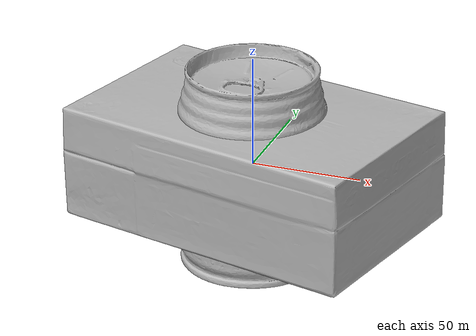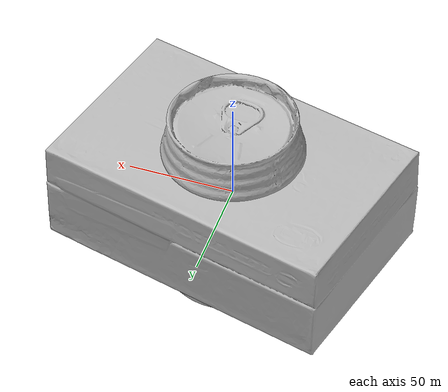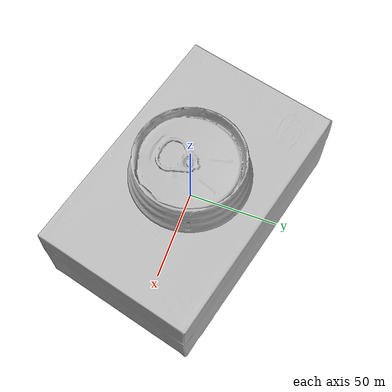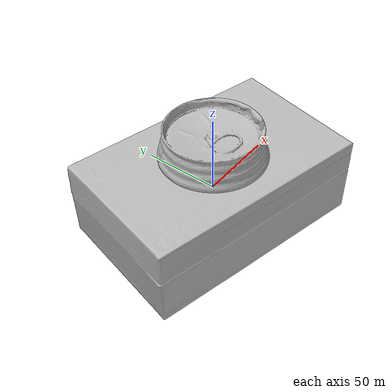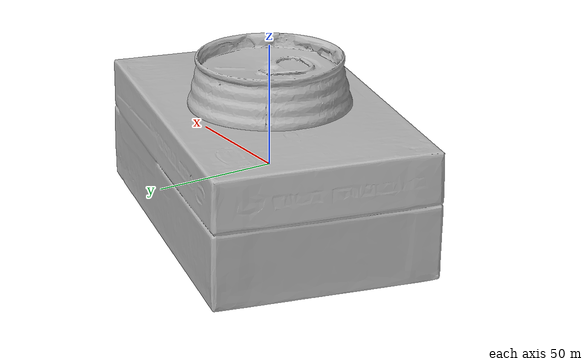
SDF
<sdf version="1.4">
 <world name="default">
  <light name="light1" type="point">
   <pose>0 0 1 0 0 0</pose>
   <diffuse>3 3 3 1</diffuse>
   <specular>3 3 3 1</specular>
  </light>
  <light name="light2" type="point">
   <pose>0 0.5 2 0 0 0</pose>
   <diffuse>1 1 1 1</diffuse>
   <specular>1 1 1 1</specular>
  </light>
  <light name="light3" type="point">
   <pose>0 0.5 2 0 0 0</pose>
   <diffuse>3 3 3 1</diffuse>
   <specular>3 3 3 1</specular>
  </light>
  <scene><ambient>0.7 0.7 0.7</ambient></scene>
  <model name="box1">
   <link name="link_box1">
    <collision name="default">
     <geometry>
      <mesh><uri>model://realsense_box/collision_meshes/collision.obj</uri><scale>1.0 1.0 1.0</scale></mesh>
     </geometry>
     <surface>
      <friction><ode><mu>0.5</mu><mu2>0.5</mu2></ode></friction>
      <contact><ode><max_vel>0</max_vel><min_depth>0.0001</min_depth><kp>1e8</kp></ode></contact>
     </surface>
    </collision>
    <visual name="default">
     <geometry>
      <mesh><uri>model://realsense_box/visual_meshes/visual.dae</uri><scale>1.0 1.0 1.0</scale></mesh>
     </geometry>
    </visual>
    <inertial>
     <mass>0.9783616662025452</mass>
     <pose>4.0744838770478964e-05 8.587493357481435e-05 -2.4153794583980925e-05 -0.00012602841694551038 -0.006358939977979225 0.005012324824875736</pose>
     <inertia>
      <ixx>0.0009306729</ixx>
      <iyy>0.0019425071</iyy>
      <izz>0.002403061</izz>
      <ixy>0</ixy>
      <ixz>0</ixz>
      <iyz>0</iyz>
     </inertia>
    </inertial>
   </link>
   <pose>0.2182971090078354 0.25124403834342957 0.027316004037857056 -5.316163389486574e-08 -1.526765952869016e-08 -0.2515651069006692</pose>
  </model>
  <model name="box2">
   <link name="link_box2">
    <collision name="default">
     <geometry>
      <mesh><uri>model://wooden_puzzle2/collision_meshes/collision.obj</uri><scale>1.0 1.0 1.0</scale></mesh>
     </geometry>
     <surface>
      <friction><ode><mu>0.5</mu><mu2>0.5</mu2></ode></friction>
      <contact><ode><max_vel>0</max_vel><min_depth>0.0001</min_depth><kp>1e8</kp></ode></contact>
     </surface>
    </collision>
    <visual name="default">
     <geometry>
      <mesh><uri>model://wooden_puzzle2/visual_meshes/visual.dae</uri><scale>1.0 1.0 1.0</scale></mesh>
     </geometry>
    </visual>
    <inertial>
     <mass>0.024048319086432457</mass>
     <pose>2.7402536943554878e-05 4.997663199901581e-05 6.587122334167361e-05 -0.19203048535200862 0.6112800928970119 -0.6338660341545117</pose>
     <inertia>
      <ixx>4.470326e-06</ixx>
      <iyy>4.593511e-06</iyy>
      <izz>4.528165e-06</izz>
      <ixy>0</ixy>
      <ixz>0</ixz>
      <iyz>0</iyz>
     </inertia>
    </inertial>
   </link>
   <pose>0.2826986312866211 -0.38314783573150635 0.01691773347556591 0.020847780654961512 0.0007218678755031533 0.04474139110791864</pose>
  </model>
  <model name="can1">
   <link name="link_can1">
    <collision name="default">
     <geometry>
      <mesh><uri>model://redbull/collision_meshes/collision.obj</uri><scale>1.0 1.0 1.0</scale></mesh>
     </geometry>
     <surface>
      <friction><ode><mu>0.5</mu><mu2>0.5</mu2></ode></friction>
      <contact><ode><max_vel>0</max_vel><min_depth>0.0001</min_depth><kp>1e8</kp></ode></contact>
     </surface>
    </collision>
    <visual name="default">
     <geometry>
      <mesh><uri>model://redbull/visual_meshes/visual.dae</uri><scale>1.0 1.0 1.0</scale></mesh>
     </geometry>
    </visual>
    <inertial>
     <mass>0.19214749336242676</mass>
     <pose>-2.212707477156073e-05 -0.00012659536150749773 -0.0006860988214612007 0.0011364686928787662 -0.01080099531045839 0.5859333437288349</pose>
     <inertia>
      <ixx>0.00018066002</ixx>
      <iyy>0.0001808125</iyy>
      <izz>0.0001072083</izz>
      <ixy>0</ixy>
      <ixz>0</ixz>
      <iyz>0</iyz>
     </inertia>
    </inertial>
   </link>
   <pose>0.09167014807462692 -0.16194291412830353 0.04638564586639404 -0.010489053184261228 0.007261189541571604 0.3020749950250012</pose>
  </model>
  <model name="can2">
   <link name="link_can2">
    <collision name="default">
     <geometry>
      <mesh><uri>model://pepsi/collision_meshes/collision.obj</uri><scale>1.0 1.0 1.0</scale></mesh>
     </geometry>
     <surface>
      <friction><ode><mu>0.5</mu><mu2>0.5</mu2></ode></friction>
      <contact><ode><max_vel>0</max_vel><min_depth>0.0001</min_depth><kp>1e8</kp></ode></contact>
     </surface>
    </collision>
    <visual name="default">
     <geometry><mesh><uri>model://pepsi/visual_meshes/visual.dae</uri><scale>1.0 1.0 1.0</scale></mesh></geometry>
    </visual>
    <inertial>
     <mass>0.3079187572002411</mass>
     <pose>-7.5590331107378e-05 2.9931279641459696e-05 -0.0003384356386959553 -0.0010678548810066889 -0.0021735327588889423 0.5674125845328797</pose>
     <inertia>
      <ixx>0.0006134332</ixx>
      <iyy>0.0006129863</iyy>
      <izz>0.0001305606</izz>
      <ixy>0</ixy>
      <ixz>0</ixz>
      <iyz>0</iyz>
     </inertia>
    </inertial>
   </link>
   <pose>0.189719557762146 -0.30919578671455383 0.0744963064789772 -1.8192831745195326e-05 2.0546116518789252e-06 -2.147645128018517</pose>
  </model>
  <physics type="ode">
   <max_contacts>50</max_contacts>
   <ode>
    <solver><type>quick</type><iters>75</iters></solver>
    <constraints>
     <contact_max_correcting_vel>0</contact_max_correcting_vel>
     <contact_surface_layer>0</contact_surface_layer>
    </constraints>
   </ode>
  </physics>
 </world>
</sdf>
